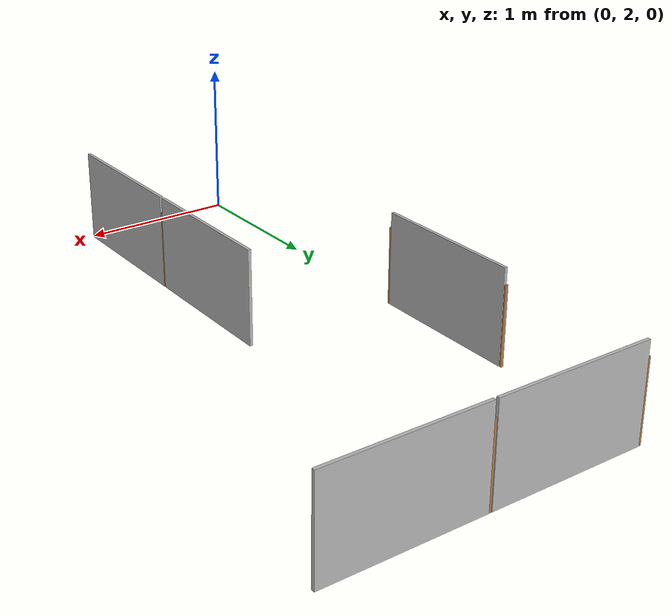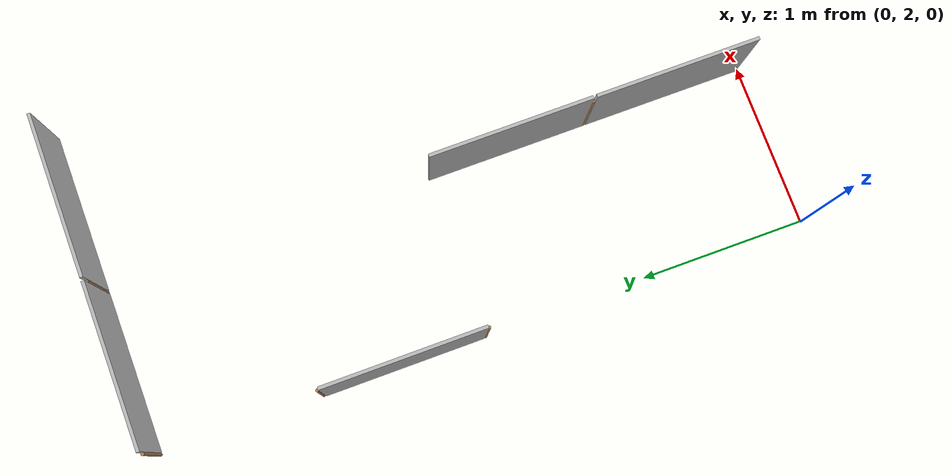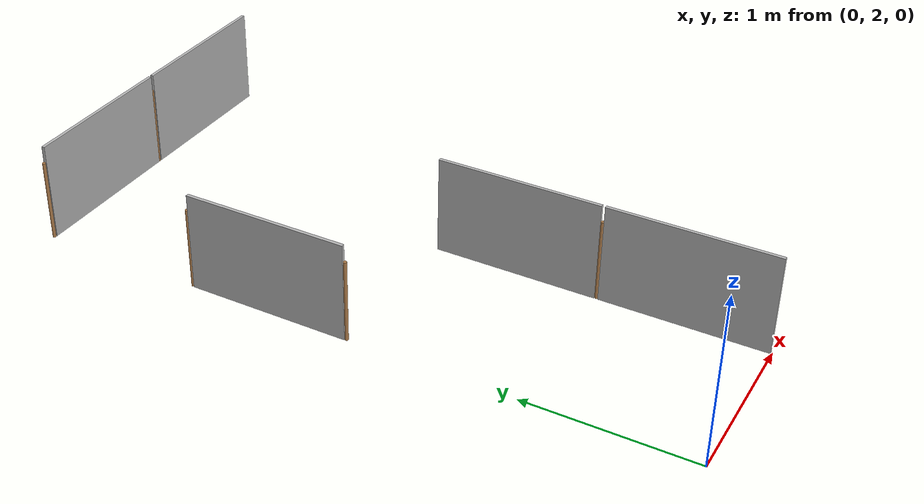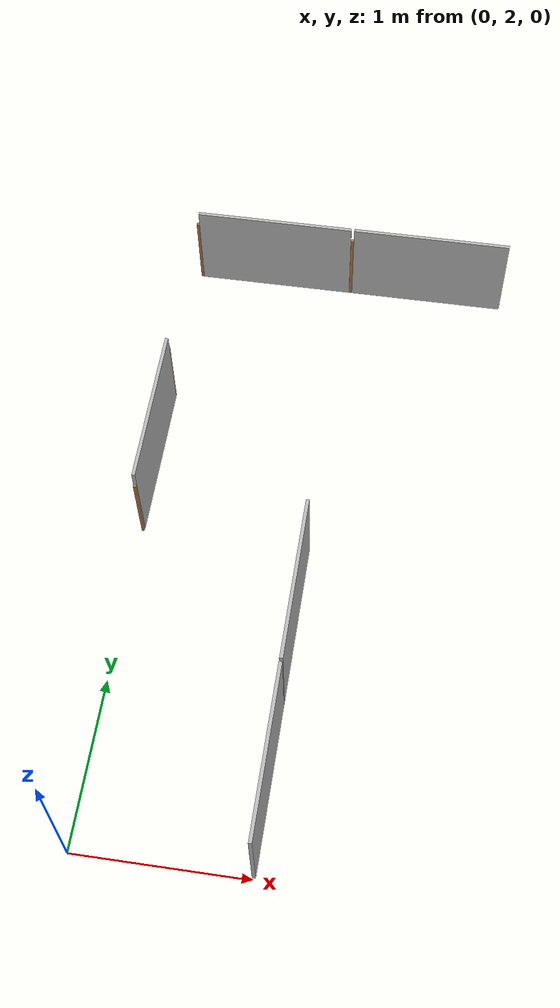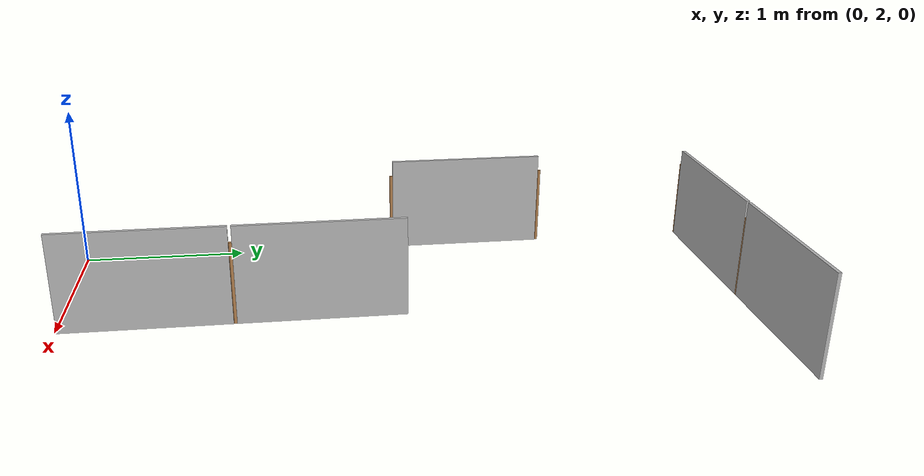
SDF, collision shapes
<sdf version="1.7">
 <model name="maze_3_6x6">
  <link name="plywood_panel_0_4_a::main">
   <pose>0 4 0 0 -0 3.14159</pose>
   <visual name="visual">
    <pose>0.01 -0.01 0 3.14159 -1.57059 3.14159</pose>
    <geometry><mesh><scale>1 1 1</scale><uri>model://plywood_panel/meshes/plywood.dae</uri></mesh></geometry>
    <material><shader type="pixel"/></material>
   </visual>
   <collision name="collision">
    <pose>0 -0.5 0.3 -1.571 -0 -1.571</pose>
    <geometry><box><size>0.98 0.6 0.02</size></box></geometry>
    <surface>
     <friction>
      <ode><mu>1</mu><mu2>1</mu2><fdir1>0 0 0</fdir1><slip1>0</slip1><slip2>0</slip2></ode>
      <torsional>
       <coefficient>1</coefficient>
       <patch_radius>0</patch_radius>
       <surface_radius>0</surface_radius>
       <use_patch_radius>1</use_patch_radius>
       <ode><slip>0</slip></ode>
      </torsional>
     </friction>
     <bounce><restitution_coefficient>0</restitution_coefficient><threshold>1e+06</threshold></bounce>
     <contact>
      <collide_without_contact>0</collide_without_contact>
      <collide_without_contact_bitmask>1</collide_without_contact_bitmask>
      <collide_bitmask>1</collide_bitmask>
      <ode>
       <soft_cfm>0</soft_cfm>
       <soft_erp>0.2</soft_erp>
       <kp>1e+13</kp>
       <kd>1</kd>
       <max_vel>0.01</max_vel>
       <min_depth>0</min_depth>
      </ode>
      <bullet>
       <split_impulse>1</split_impulse>
       <split_impulse_penetration_threshold>-0.01</split_impulse_penetration_threshold>
       <soft_cfm>0</soft_cfm>
       <soft_erp>0.2</soft_erp>
       <kp>1e+13</kp>
       <kd>1</kd>
      </bullet>
     </contact>
    </surface>
   </collision>
  </link>
  <link name="plywood_panel_0_6_b::main">
   <pose>0 6 0 0 -0 1.571</pose>
   <visual name="visual">
    <pose>0.01 -0.01 0 3.14159 -1.57059 3.14159</pose>
    <geometry><mesh><scale>1 1 1</scale><uri>model://plywood_panel/meshes/plywood.dae</uri></mesh></geometry>
    <material><shader type="pixel"/></material>
   </visual>
   <collision name="collision">
    <pose>0 -0.5 0.3 -1.571 -0 -1.571</pose>
    <geometry><box><size>0.98 0.6 0.02</size></box></geometry>
    <surface>
     <friction>
      <ode><mu>1</mu><mu2>1</mu2><fdir1>0 0 0</fdir1><slip1>0</slip1><slip2>0</slip2></ode>
      <torsional>
       <coefficient>1</coefficient>
       <patch_radius>0</patch_radius>
       <surface_radius>0</surface_radius>
       <use_patch_radius>1</use_patch_radius>
       <ode><slip>0</slip></ode>
      </torsional>
     </friction>
     <bounce><restitution_coefficient>0</restitution_coefficient><threshold>1e+06</threshold></bounce>
     <contact>
      <collide_without_contact>0</collide_without_contact>
      <collide_without_contact_bitmask>1</collide_without_contact_bitmask>
      <collide_bitmask>1</collide_bitmask>
      <ode>
       <soft_cfm>0</soft_cfm>
       <soft_erp>0.2</soft_erp>
       <kp>1e+13</kp>
       <kd>1</kd>
       <max_vel>0.01</max_vel>
       <min_depth>0</min_depth>
      </ode>
      <bullet>
       <split_impulse>1</split_impulse>
       <split_impulse_penetration_threshold>-0.01</split_impulse_penetration_threshold>
       <soft_cfm>0</soft_cfm>
       <soft_erp>0.2</soft_erp>
       <kp>1e+13</kp>
       <kd>1</kd>
      </bullet>
     </contact>
    </surface>
   </collision>
  </link>
  <link name="plywood_panel_1_3_a::main">
   <pose>1 3 0 0 -0 0</pose>
   <visual name="visual">
    <pose>0.01 -0.01 0 3.14159 -1.57059 3.14159</pose>
    <geometry><mesh><scale>1 1 1</scale><uri>model://plywood_panel/meshes/plywood.dae</uri></mesh></geometry>
    <material><shader type="pixel"/></material>
   </visual>
   <collision name="collision">
    <pose>0 -0.5 0.3 -1.571 -0 -1.571</pose>
    <geometry><box><size>0.98 0.6 0.02</size></box></geometry>
    <surface>
     <friction>
      <ode><mu>1</mu><mu2>1</mu2><fdir1>0 0 0</fdir1><slip1>0</slip1><slip2>0</slip2></ode>
      <torsional>
       <coefficient>1</coefficient>
       <patch_radius>0</patch_radius>
       <surface_radius>0</surface_radius>
       <use_patch_radius>1</use_patch_radius>
       <ode><slip>0</slip></ode>
      </torsional>
     </friction>
     <bounce><restitution_coefficient>0</restitution_coefficient><threshold>1e+06</threshold></bounce>
     <contact>
      <collide_without_contact>0</collide_without_contact>
      <collide_without_contact_bitmask>1</collide_without_contact_bitmask>
      <collide_bitmask>1</collide_bitmask>
      <ode>
       <soft_cfm>0</soft_cfm>
       <soft_erp>0.2</soft_erp>
       <kp>1e+13</kp>
       <kd>1</kd>
       <max_vel>0.01</max_vel>
       <min_depth>0</min_depth>
      </ode>
      <bullet>
       <split_impulse>1</split_impulse>
       <split_impulse_penetration_threshold>-0.01</split_impulse_penetration_threshold>
       <soft_cfm>0</soft_cfm>
       <soft_erp>0.2</soft_erp>
       <kp>1e+13</kp>
       <kd>1</kd>
      </bullet>
     </contact>
    </surface>
   </collision>
  </link>
  <link name="plywood_panel_1_4_a::main">
   <pose>1 4 0 0 -0 0</pose>
   <visual name="visual">
    <pose>0.01 -0.01 0 3.14159 -1.57059 3.14159</pose>
    <geometry><mesh><scale>1 1 1</scale><uri>model://plywood_panel/meshes/plywood.dae</uri></mesh></geometry>
    <material><shader type="pixel"/></material>
   </visual>
   <collision name="collision">
    <pose>0 -0.5 0.3 -1.571 -0 -1.571</pose>
    <geometry><box><size>0.98 0.6 0.02</size></box></geometry>
    <surface>
     <friction>
      <ode><mu>1</mu><mu2>1</mu2><fdir1>0 0 0</fdir1><slip1>0</slip1><slip2>0</slip2></ode>
      <torsional>
       <coefficient>1</coefficient>
       <patch_radius>0</patch_radius>
       <surface_radius>0</surface_radius>
       <use_patch_radius>1</use_patch_radius>
       <ode><slip>0</slip></ode>
      </torsional>
     </friction>
     <bounce><restitution_coefficient>0</restitution_coefficient><threshold>1e+06</threshold></bounce>
     <contact>
      <collide_without_contact>0</collide_without_contact>
      <collide_without_contact_bitmask>1</collide_without_contact_bitmask>
      <collide_bitmask>1</collide_bitmask>
      <ode>
       <soft_cfm>0</soft_cfm>
       <soft_erp>0.2</soft_erp>
       <kp>1e+13</kp>
       <kd>1</kd>
       <max_vel>0.01</max_vel>
       <min_depth>0</min_depth>
      </ode>
      <bullet>
       <split_impulse>1</split_impulse>
       <split_impulse_penetration_threshold>-0.01</split_impulse_penetration_threshold>
       <soft_cfm>0</soft_cfm>
       <soft_erp>0.2</soft_erp>
       <kp>1e+13</kp>
       <kd>1</kd>
      </bullet>
     </contact>
    </surface>
   </collision>
  </link>
  <link name="plywood_panel_1_6_b::main">
   <pose>1 6 0 0 -0 1.571</pose>
   <visual name="visual">
    <pose>0.01 -0.01 0 3.14159 -1.57059 3.14159</pose>
    <geometry><mesh><scale>1 1 1</scale><uri>model://plywood_panel/meshes/plywood.dae</uri></mesh></geometry>
    <material><shader type="pixel"/></material>
   </visual>
   <collision name="collision">
    <pose>0 -0.5 0.3 -1.571 -0 -1.571</pose>
    <geometry><box><size>0.98 0.6 0.02</size></box></geometry>
    <surface>
     <friction>
      <ode><mu>1</mu><mu2>1</mu2><fdir1>0 0 0</fdir1><slip1>0</slip1><slip2>0</slip2></ode>
      <torsional>
       <coefficient>1</coefficient>
       <patch_radius>0</patch_radius>
       <surface_radius>0</surface_radius>
       <use_patch_radius>1</use_patch_radius>
       <ode><slip>0</slip></ode>
      </torsional>
     </friction>
     <bounce><restitution_coefficient>0</restitution_coefficient><threshold>1e+06</threshold></bounce>
     <contact>
      <collide_without_contact>0</collide_without_contact>
      <collide_without_contact_bitmask>1</collide_without_contact_bitmask>
      <collide_bitmask>1</collide_bitmask>
      <ode>
       <soft_cfm>0</soft_cfm>
       <soft_erp>0.2</soft_erp>
       <kp>1e+13</kp>
       <kd>1</kd>
       <max_vel>0.01</max_vel>
       <min_depth>0</min_depth>
      </ode>
      <bullet>
       <split_impulse>1</split_impulse>
       <split_impulse_penetration_threshold>-0.01</split_impulse_penetration_threshold>
       <soft_cfm>0</soft_cfm>
       <soft_erp>0.2</soft_erp>
       <kp>1e+13</kp>
       <kd>1</kd>
      </bullet>
     </contact>
    </surface>
   </collision>
  </link>
  <link name="wooden_joint_0_4_a::link_0">
   <pose>0 4 0.25 0 -0 0</pose>
   <inertial>
    <mass>0.00215981</mass>
    <inertia>
     <ixx>0.00018028</ixx>
     <ixy>0</ixy>
     <ixz>0</ixz>
     <iyy>0.00018028</iyy>
     <iyz>0</iyz>
     <izz>5.8e-07</izz>
    </inertia>
   </inertial>
   <visual name="visual">
    <geometry><cylinder><radius>0.01</radius><length>0.5</length></cylinder></geometry>
    <material>
     <lighting>1</lighting>
     <script><uri>file://media/materials/scripts/gazebo.material</uri><name>Gazebo/Wood</name></script>
     <shader type="pixel"><normal_map>__default__</normal_map></shader>
     <ambient>0.3 0.3 0.3 1</ambient>
     <diffuse>0.7 0.7 0.7 1</diffuse>
     <specular>0.01 0.01 0.01 1</specular>
     <emissive>0 0 0 1</emissive>
    </material>
   </visual>
   <collision name="collision">
    <geometry><cylinder><radius>0.01</radius><length>0.5</length></cylinder></geometry>
    <surface>
     <friction>
      <ode><mu>1</mu><mu2>1</mu2><fdir1>0 0 0</fdir1><slip1>0</slip1><slip2>0</slip2></ode>
      <torsional>
       <coefficient>1</coefficient>
       <patch_radius>0</patch_radius>
       <surface_radius>0</surface_radius>
       <use_patch_radius>1</use_patch_radius>
       <ode><slip>0</slip></ode>
      </torsional>
     </friction>
     <bounce><restitution_coefficient>0</restitution_coefficient><threshold>1e+06</threshold></bounce>
     <contact>
      <collide_without_contact>0</collide_without_contact>
      <collide_without_contact_bitmask>1</collide_without_contact_bitmask>
      <collide_bitmask>1</collide_bitmask>
      <ode>
       <soft_cfm>0</soft_cfm>
       <soft_erp>0.2</soft_erp>
       <kp>1e+13</kp>
       <kd>1</kd>
       <max_vel>0.01</max_vel>
       <min_depth>0</min_depth>
      </ode>
      <bullet>
       <split_impulse>1</split_impulse>
       <split_impulse_penetration_threshold>-0.01</split_impulse_penetration_threshold>
       <soft_cfm>0</soft_cfm>
       <soft_erp>0.2</soft_erp>
       <kp>1e+13</kp>
       <kd>1</kd>
      </bullet>
     </contact>
    </surface>
   </collision>
  </link>
  <link name="wooden_joint_0_5_a::link_0">
   <pose>0 5 0.25 0 -0 0</pose>
   <inertial>
    <mass>0.00215981</mass>
    <inertia>
     <ixx>0.00018028</ixx>
     <ixy>0</ixy>
     <ixz>0</ixz>
     <iyy>0.00018028</iyy>
     <iyz>0</iyz>
     <izz>5.8e-07</izz>
    </inertia>
   </inertial>
   <visual name="visual">
    <geometry><cylinder><radius>0.01</radius><length>0.5</length></cylinder></geometry>
    <material>
     <lighting>1</lighting>
     <script><uri>file://media/materials/scripts/gazebo.material</uri><name>Gazebo/Wood</name></script>
     <shader type="pixel"><normal_map>__default__</normal_map></shader>
     <ambient>0.3 0.3 0.3 1</ambient>
     <diffuse>0.7 0.7 0.7 1</diffuse>
     <specular>0.01 0.01 0.01 1</specular>
     <emissive>0 0 0 1</emissive>
    </material>
   </visual>
   <collision name="collision">
    <geometry><cylinder><radius>0.01</radius><length>0.5</length></cylinder></geometry>
    <surface>
     <friction>
      <ode><mu>1</mu><mu2>1</mu2><fdir1>0 0 0</fdir1><slip1>0</slip1><slip2>0</slip2></ode>
      <torsional>
       <coefficient>1</coefficient>
       <patch_radius>0</patch_radius>
       <surface_radius>0</surface_radius>
       <use_patch_radius>1</use_patch_radius>
       <ode><slip>0</slip></ode>
      </torsional>
     </friction>
     <bounce><restitution_coefficient>0</restitution_coefficient><threshold>1e+06</threshold></bounce>
     <contact>
      <collide_without_contact>0</collide_without_contact>
      <collide_without_contact_bitmask>1</collide_without_contact_bitmask>
      <collide_bitmask>1</collide_bitmask>
      <ode>
       <soft_cfm>0</soft_cfm>
       <soft_erp>0.2</soft_erp>
       <kp>1e+13</kp>
       <kd>1</kd>
       <max_vel>0.01</max_vel>
       <min_depth>0</min_depth>
      </ode>
      <bullet>
       <split_impulse>1</split_impulse>
       <split_impulse_penetration_threshold>-0.01</split_impulse_penetration_threshold>
       <soft_cfm>0</soft_cfm>
       <soft_erp>0.2</soft_erp>
       <kp>1e+13</kp>
       <kd>1</kd>
      </bullet>
     </contact>
    </surface>
   </collision>
  </link>
  <link name="wooden_joint_0_6_b::link_0">
   <pose>0 6 0.25 0 -0 0</pose>
   <inertial>
    <mass>0.00215981</mass>
    <inertia>
     <ixx>0.00018028</ixx>
     <ixy>0</ixy>
     <ixz>0</ixz>
     <iyy>0.00018028</iyy>
     <iyz>0</iyz>
     <izz>5.8e-07</izz>
    </inertia>
   </inertial>
   <visual name="visual">
    <geometry><cylinder><radius>0.01</radius><length>0.5</length></cylinder></geometry>
    <material>
     <lighting>1</lighting>
     <script><uri>file://media/materials/scripts/gazebo.material</uri><name>Gazebo/Wood</name></script>
     <shader type="pixel"><normal_map>__default__</normal_map></shader>
     <ambient>0.3 0.3 0.3 1</ambient>
     <diffuse>0.7 0.7 0.7 1</diffuse>
     <specular>0.01 0.01 0.01 1</specular>
     <emissive>0 0 0 1</emissive>
    </material>
   </visual>
   <collision name="collision">
    <geometry><cylinder><radius>0.01</radius><length>0.5</length></cylinder></geometry>
    <surface>
     <friction>
      <ode><mu>1</mu><mu2>1</mu2><fdir1>0 0 0</fdir1><slip1>0</slip1><slip2>0</slip2></ode>
      <torsional>
       <coefficient>1</coefficient>
       <patch_radius>0</patch_radius>
       <surface_radius>0</surface_radius>
       <use_patch_radius>1</use_patch_radius>
       <ode><slip>0</slip></ode>
      </torsional>
     </friction>
     <bounce><restitution_coefficient>0</restitution_coefficient><threshold>1e+06</threshold></bounce>
     <contact>
      <collide_without_contact>0</collide_without_contact>
      <collide_without_contact_bitmask>1</collide_without_contact_bitmask>
      <collide_bitmask>1</collide_bitmask>
      <ode>
       <soft_cfm>0</soft_cfm>
       <soft_erp>0.2</soft_erp>
       <kp>1e+13</kp>
       <kd>1</kd>
       <max_vel>0.01</max_vel>
       <min_depth>0</min_depth>
      </ode>
      <bullet>
       <split_impulse>1</split_impulse>
       <split_impulse_penetration_threshold>-0.01</split_impulse_penetration_threshold>
       <soft_cfm>0</soft_cfm>
       <soft_erp>0.2</soft_erp>
       <kp>1e+13</kp>
       <kd>1</kd>
      </bullet>
     </contact>
    </surface>
   </collision>
  </link>
  <link name="wooden_joint_1_3::link_0">
   <pose>1 3 0.25 0 -0 0</pose>
   <inertial>
    <mass>0.00215981</mass>
    <inertia>
     <ixx>0.00018028</ixx>
     <ixy>0</ixy>
     <ixz>0</ixz>
     <iyy>0.00018028</iyy>
     <iyz>0</iyz>
     <izz>5.8e-07</izz>
    </inertia>
   </inertial>
   <visual name="visual">
    <geometry><cylinder><radius>0.01</radius><length>0.5</length></cylinder></geometry>
    <material>
     <lighting>1</lighting>
     <script><uri>file://media/materials/scripts/gazebo.material</uri><name>Gazebo/Wood</name></script>
     <shader type="pixel"><normal_map>__default__</normal_map></shader>
     <ambient>0.3 0.3 0.3 1</ambient>
     <diffuse>0.7 0.7 0.7 1</diffuse>
     <specular>0.01 0.01 0.01 1</specular>
     <emissive>0 0 0 1</emissive>
    </material>
   </visual>
   <collision name="collision">
    <geometry><cylinder><radius>0.01</radius><length>0.5</length></cylinder></geometry>
    <surface>
     <friction>
      <ode><mu>1</mu><mu2>1</mu2><fdir1>0 0 0</fdir1><slip1>0</slip1><slip2>0</slip2></ode>
      <torsional>
       <coefficient>1</coefficient>
       <patch_radius>0</patch_radius>
       <surface_radius>0</surface_radius>
       <use_patch_radius>1</use_patch_radius>
       <ode><slip>0</slip></ode>
      </torsional>
     </friction>
     <bounce><restitution_coefficient>0</restitution_coefficient><threshold>1e+06</threshold></bounce>
     <contact>
      <collide_without_contact>0</collide_without_contact>
      <collide_without_contact_bitmask>1</collide_without_contact_bitmask>
      <collide_bitmask>1</collide_bitmask>
      <ode>
       <soft_cfm>0</soft_cfm>
       <soft_erp>0.2</soft_erp>
       <kp>1e+13</kp>
       <kd>1</kd>
       <max_vel>0.01</max_vel>
       <min_depth>0</min_depth>
      </ode>
      <bullet>
       <split_impulse>1</split_impulse>
       <split_impulse_penetration_threshold>-0.01</split_impulse_penetration_threshold>
       <soft_cfm>0</soft_cfm>
       <soft_erp>0.2</soft_erp>
       <kp>1e+13</kp>
       <kd>1</kd>
      </bullet>
     </contact>
    </surface>
   </collision>
  </link>
  <link name="wooden_joint_1_6_b::link_0">
   <pose>1 6 0.25 0 -0 0</pose>
   <inertial>
    <mass>0.00215981</mass>
    <inertia>
     <ixx>0.00018028</ixx>
     <ixy>0</ixy>
     <ixz>0</ixz>
     <iyy>0.00018028</iyy>
     <iyz>0</iyz>
     <izz>5.8e-07</izz>
    </inertia>
   </inertial>
   <visual name="visual">
    <geometry><cylinder><radius>0.01</radius><length>0.5</length></cylinder></geometry>
    <material>
     <lighting>1</lighting>
     <script><uri>file://media/materials/scripts/gazebo.material</uri><name>Gazebo/Wood</name></script>
     <shader type="pixel"><normal_map>__default__</normal_map></shader>
     <ambient>0.3 0.3 0.3 1</ambient>
     <diffuse>0.7 0.7 0.7 1</diffuse>
     <specular>0.01 0.01 0.01 1</specular>
     <emissive>0 0 0 1</emissive>
    </material>
   </visual>
   <collision name="collision">
    <geometry><cylinder><radius>0.01</radius><length>0.5</length></cylinder></geometry>
    <surface>
     <friction>
      <ode><mu>1</mu><mu2>1</mu2><fdir1>0 0 0</fdir1><slip1>0</slip1><slip2>0</slip2></ode>
      <torsional>
       <coefficient>1</coefficient>
       <patch_radius>0</patch_radius>
       <surface_radius>0</surface_radius>
       <use_patch_radius>1</use_patch_radius>
       <ode><slip>0</slip></ode>
      </torsional>
     </friction>
     <bounce><restitution_coefficient>0</restitution_coefficient><threshold>1e+06</threshold></bounce>
     <contact>
      <collide_without_contact>0</collide_without_contact>
      <collide_without_contact_bitmask>1</collide_without_contact_bitmask>
      <collide_bitmask>1</collide_bitmask>
      <ode>
       <soft_cfm>0</soft_cfm>
       <soft_erp>0.2</soft_erp>
       <kp>1e+13</kp>
       <kd>1</kd>
       <max_vel>0.01</max_vel>
       <min_depth>0</min_depth>
      </ode>
      <bullet>
       <split_impulse>1</split_impulse>
       <split_impulse_penetration_threshold>-0.01</split_impulse_penetration_threshold>
       <soft_cfm>0</soft_cfm>
       <soft_erp>0.2</soft_erp>
       <kp>1e+13</kp>
       <kd>1</kd>
      </bullet>
     </contact>
    </surface>
   </collision>
  </link>
  <static>1</static>
 </model>
</sdf>
